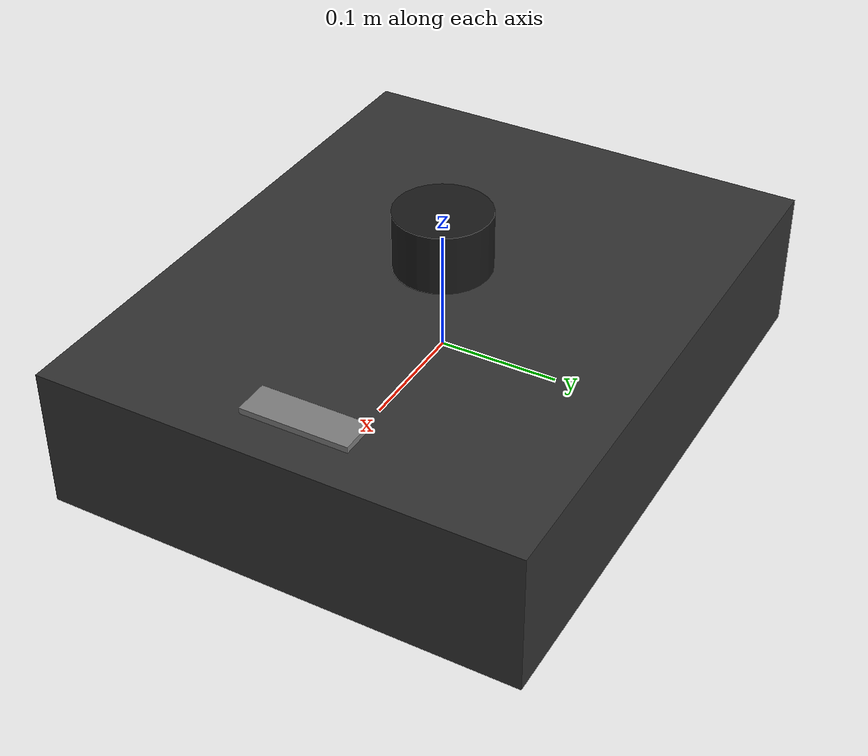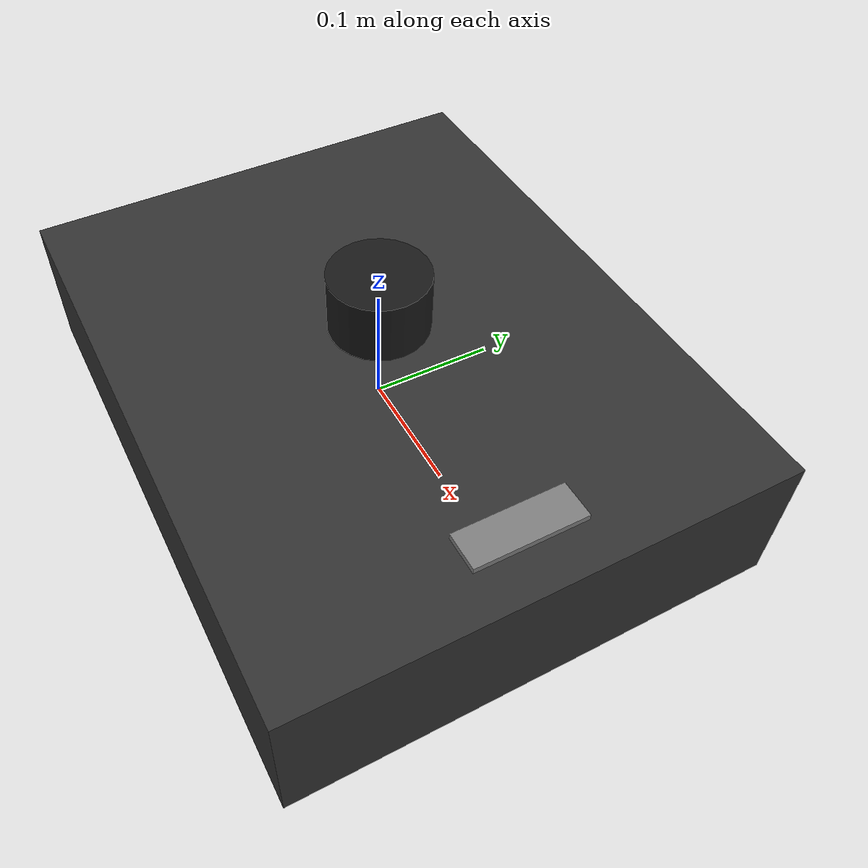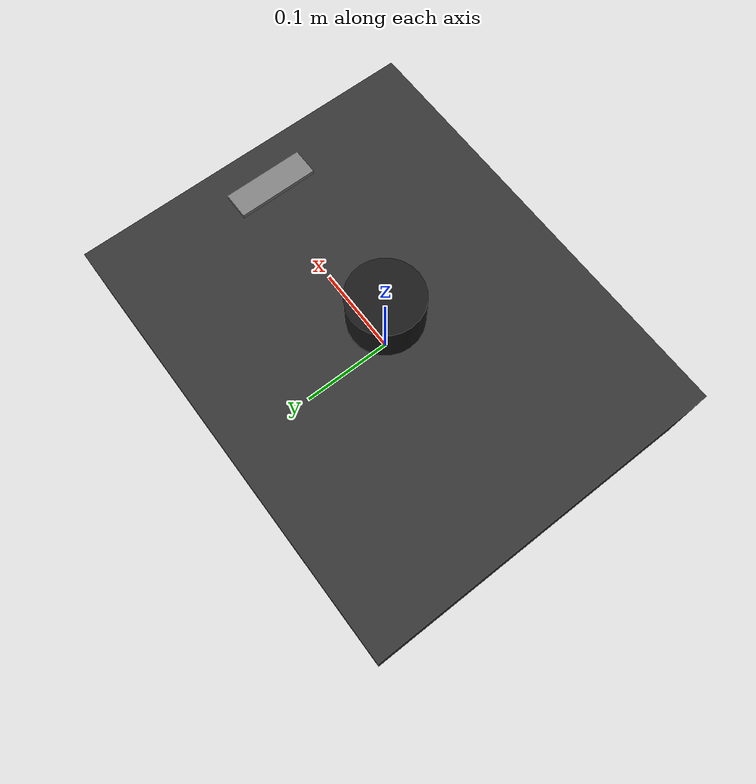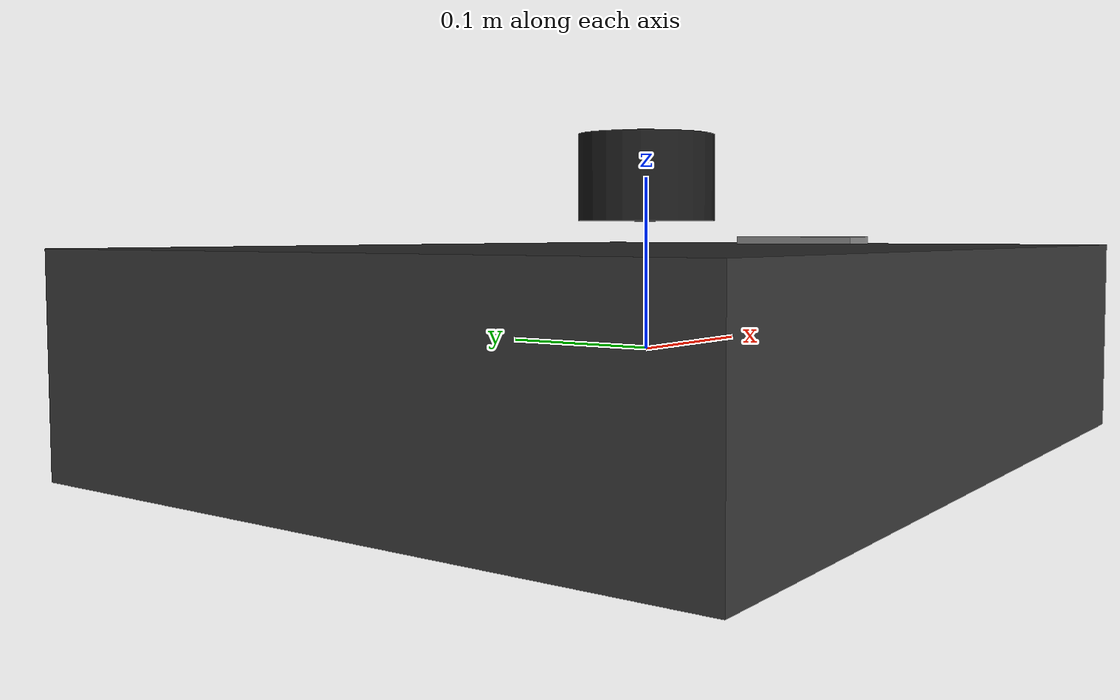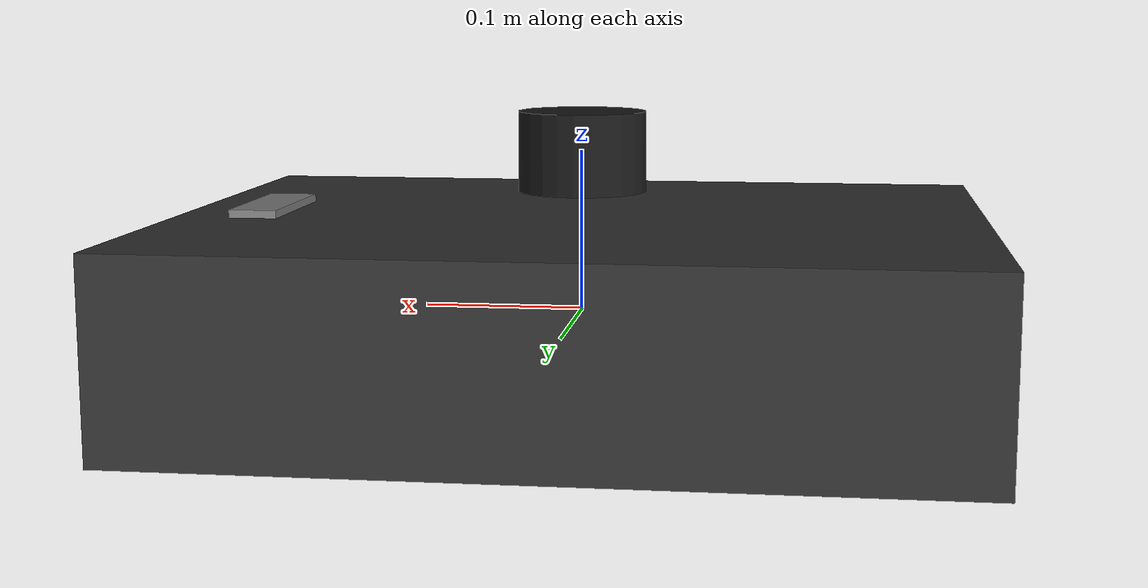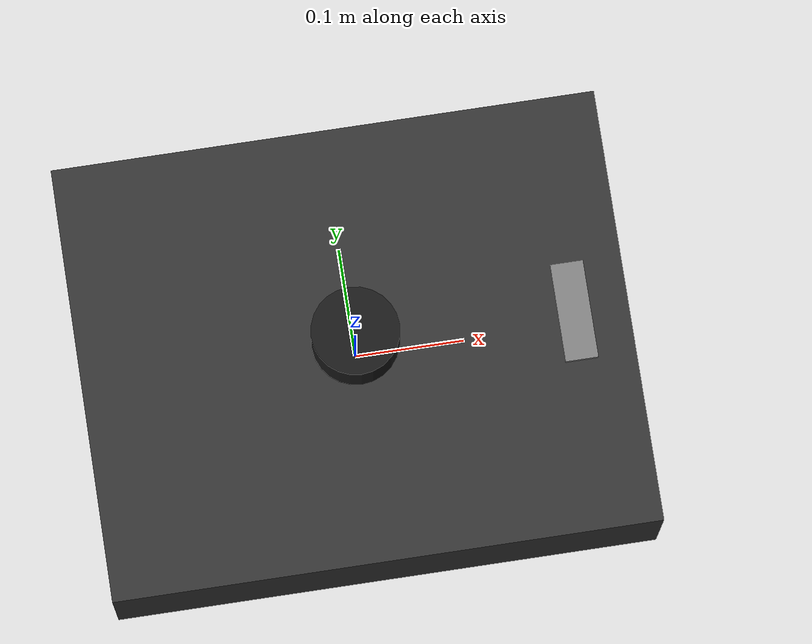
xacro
<?xml version="1.0"?>
<robot name="robofest_rover" xmlns:xacro="http://www.ros.org/wiki/xacro">

  <!-- =========================================================
       PROPERTIES — TBD: measure all values from physical rover
       ========================================================= -->
  <xacro:property name="chassis_length" value="0.50"/>  <!-- TBD m -->
  <xacro:property name="chassis_width"  value="0.40"/>  <!-- TBD m -->
  <xacro:property name="chassis_height" value="0.12"/>  <!-- TBD m -->
  <xacro:property name="chassis_mass"   value="5.0"/>   <!-- TBD kg -->

  <xacro:property name="wheel_radius"   value="0.05"/>  <!-- TBD m -->
  <xacro:property name="wheel_width"    value="0.04"/>  <!-- TBD m -->
  <xacro:property name="wheel_mass"     value="0.3"/>   <!-- TBD kg -->

  <!-- =========================================================
       INERTIA MACROS
       ========================================================= -->
  <xacro:macro name="box_inertia" params="m x y z">
    <inertia ixx="${m*(y*y+z*z)/12}" ixy="0" ixz="0"
             iyy="${m*(x*x+z*z)/12}" iyz="0"
             izz="${m*(x*x+y*y)/12}"/>
  </xacro:macro>

  <xacro:macro name="cylinder_inertia" params="m r h">
    <inertia ixx="${m*(3*r*r+h*h)/12}" ixy="0" ixz="0"
             iyy="${m*(3*r*r+h*h)/12}" iyz="0"
             izz="${m*r*r/2}"/>
  </xacro:macro>

  <!-- =========================================================
       BASE LINK (Chassis)
       ========================================================= -->
  <link name="base_link">
    <visual>
      <geometry>
        <box size="${chassis_length} ${chassis_width} ${chassis_height}"/>
      </geometry>
      <material name="dark_grey">
        <color rgba="0.2 0.2 0.2 1"/>
      </material>
    </visual>
    <collision>
      <geometry>
        <box size="${chassis_length} ${chassis_width} ${chassis_height}"/>
      </geometry>
    </collision>
    <inertial>
      <mass value="${chassis_mass}"/>
      <xacro:box_inertia m="${chassis_mass}"
                         x="${chassis_length}"
                         y="${chassis_width}"
                         z="${chassis_height}"/>
    </inertial>
  </link>

  <link name="lidar_link">
    <visual>
      <geometry><cylinder radius="0.04" length="0.05"/></geometry>
      <material name="black"><color rgba="0.1 0.1 0.1 1"/></material>
    </visual>
    <collision>
      <geometry><cylinder radius="0.04" length="0.05"/></geometry>
    </collision>
    <inertial>
      <mass value="0.2"/>
      <xacro:cylinder_inertia m="0.2" r="0.04" h="0.05"/>
    </inertial>
  </link>

  <joint name="lidar_joint" type="fixed">
    <parent link="base_link"/>
    <child  link="lidar_link"/>
    <!-- TBD: replace with actual measured offsets -->
    <origin xyz="0.0 0.0 0.10" rpy="0 0 0"/>
  </joint>

  <!-- =========================================================
       CAMERA LINK — TBD: measure offset
       ========================================================= -->
  <link name="camera_link">
    <visual>
      <geometry><box size="0.03 0.09 0.03"/></geometry>
      <material name="grey"><color rgba="0.5 0.5 0.5 1"/></material>
    </visual>
    <inertial>
      <mass value="0.05"/>
      <xacro:box_inertia m="0.05" x="0.03" y="0.09" z="0.03"/>
    </inertial>
  </link>

  <joint name="camera_joint" type="fixed">
    <parent link="base_link"/>
    <child  link="camera_link"/>
    <origin xyz="0.20 0.0 0.05" rpy="0 0 0"/>  <!-- TBD -->
  </joint>

  <!-- =========================================================
       IMU LINK — TBD: must match physical IMU location exactly
       ========================================================= -->
  <link name="imu_link">
    <inertial>
      <mass value="0.01"/>
      <inertia ixx="1e-6" ixy="0" ixz="0" iyy="1e-6" iyz="0" izz="1e-6"/>
    </inertial>
  </link>

  <joint name="imu_joint" type="fixed">
    <parent link="base_link"/>
    <child  link="imu_link"/>
    <origin xyz="0.0 0.0 0.0" rpy="0 0 0"/>  <!-- TBD: mount position -->
  </joint>

  <xacro:macro name="tof_link" params="name x y z pitch">
    <link name="${name}_link">
      <visual>
        <geometry><box size="0.02 0.02 0.01"/></geometry>
        <material name="green"><color rgba="0 0.8 0 1"/></material>
      </visual>
      <inertial>
        <mass value="0.005"/>
        <inertia ixx="1e-7" ixy="0" ixz="0" iyy="1e-7" iyz="0" izz="1e-7"/>
      </inertial>
    </link>
    <joint name="${name}_joint" type="fixed">
      <parent link="base_link"/>
      <child  link="${name}_link"/>
      <origin xyz="${x} ${y} ${z}" rpy="0 ${pitch} 0"/>
    </joint>
  </xacro:macro>

  <!-- TBD: all xyz values are placeholder offsets -->
  <xacro:tof_link name="tof_front_left"   x="0.22" y=" 0.10" z="-0.02" pitch="0.2"/>
  <xacro:tof_link name="tof_front_center" x="0.23" y=" 0.00" z="-0.02" pitch="0.2"/>
  <xacro:tof_link name="tof_front_right"  x="0.22" y="-0.10" z="-0.02" pitch="0.2"/>

  <!-- =========================================================
       ULTRASONIC LINKS — TBD
       ========================================================= -->
  <link name="ultrasonic_front_link"><inertial><mass value="0.01"/>
    <inertia ixx="1e-6" ixy="0" ixz="0" iyy="1e-6" iyz="0" izz="1e-6"/>
  </inertial></link>
  <joint name="ultrasonic_front_joint" type="fixed">
    <parent link="base_link"/>
    <child  link="ultrasonic_front_link"/>
    <origin xyz="0.25 0.0 0.0" rpy="0 0 0"/>  <!-- TBD -->
  </joint>

  <link name="ultrasonic_rear_link"><inertial><mass value="0.01"/>
    <inertia ixx="1e-6" ixy="0" ixz="0" iyy="1e-6" iyz="0" izz="1e-6"/>
  </inertial></link>
  <joint name="ultrasonic_rear_joint" type="fixed">
    <parent link="base_link"/>
    <child  link="ultrasonic_rear_link"/>
    <origin xyz="-0.25 0.0 0.0" rpy="0 0 3.14"/>  <!-- TBD -->
  </joint>

</robot>
